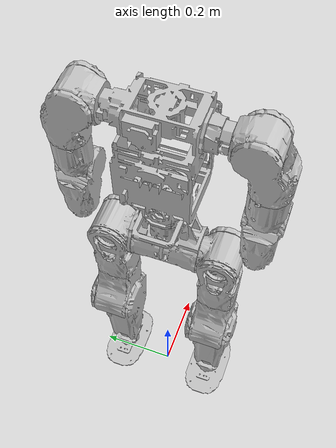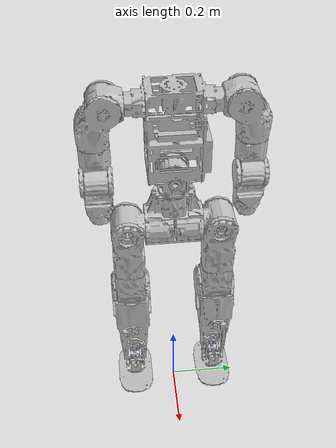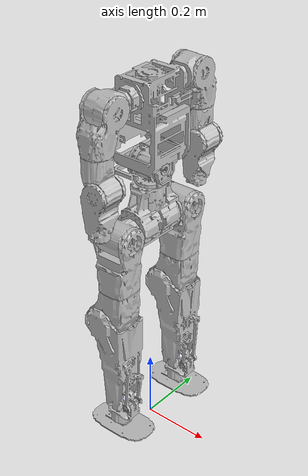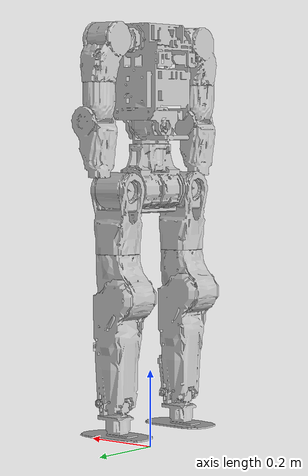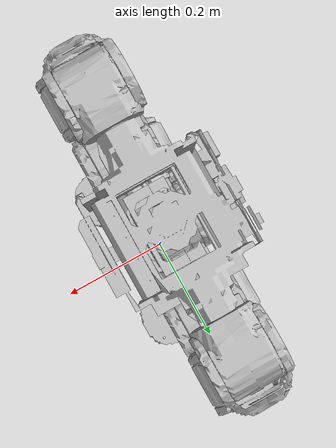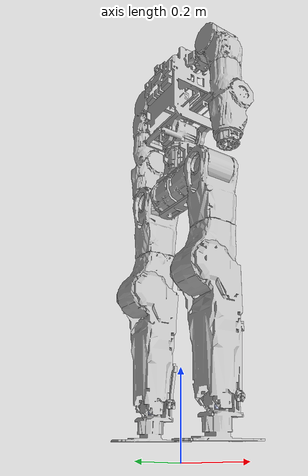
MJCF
<?xml version='1.0' encoding='utf-8'?>
<mujoco model="GP02">
  <compiler angle="radian" eulerseq="zyx" meshdir="../meshes" autolimits="true" />
  <option timestep="0.001" />
  <visual>
    <global azimuth="150" elevation="-20" />
    <headlight ambient="0.3 0.3 0.3" diffuse="0.6 0.6 0.6" specular="0 0 0" />
    <scale forcewidth="0.03" contactwidth="0.01" contactheight="0.02" com="1" framelength="0.6" framewidth="0.05" />
    <rgba haze="0.15 0.25 0.35 1" com="0.502 1 0 0.5" contactpoint="1 1 0.6 0.4" contactforce="0.98 0.4 0.4 1" />
  </visual>

  <asset>
    <mesh name="base_link" file="base_link.STL" />
    <mesh name="L_hip_pitch_link" file="L_hip_pitch_link.STL" />
    <mesh name="L_hip_roll_link" file="L_hip_roll_link.STL" />
    <mesh name="L_hip_yaw_link" file="L_hip_yaw_link.STL" />
    <mesh name="L_knee_link" file="L_knee_link.STL" />
    <mesh name="L_ankle_pitch_link" file="L_ankle_pitch_link.STL" />
    <mesh name="L_ankle_roll_link" file="L_ankle_roll_link.STL" />
    <mesh name="R_hip_pitch_link" file="R_hip_pitch_link.STL" />
    <mesh name="R_hip_roll_link" file="R_hip_roll_link.STL" />
    <mesh name="R_hip_yaw_link" file="R_hip_yaw_link.STL" />
    <mesh name="R_knee_link" file="R_knee_link.STL" />
    <mesh name="R_ankle_pitch_link" file="R_ankle_pitch_link.STL" />
    <mesh name="R_ankle_roll_link" file="R_ankle_roll_link.STL" />
    <mesh name="waist_yaw_link" file="waist_yaw_link.STL" />
    <mesh name="waist_roll_link" file="waist_roll_link.STL" />
    <mesh name="L_shoulder_pitch_link" file="L_shoulder_pitch_link.STL" />
    <mesh name="L_shoulder_roll_link" file="L_shoulder_roll_link.STL" />
    <mesh name="L_shoulder_yaw_link" file="L_shoulder_yaw_link.STL" />
    <mesh name="L_elbow_link" file="L_elbow_link.STL" />
    <mesh name="R_shoulder_pitch_link" file="R_shoulder_pitch_link.STL" />
    <mesh name="R_shoulder_roll_link" file="R_shoulder_roll_link.STL" />
    <mesh name="R_shoulder_yaw_link" file="R_shoulder_yaw_link.STL" />
    <mesh name="R_elbow_link" file="R_elbow_link.STL" />
  </asset>

  <worldbody>
    <body name="base_link" pos="0 0 0.67">
      <inertial pos="0 -0.004 0.025" mass="0.987" diaginertia="0.006 0.004 0.003" />
      <freejoint name="floating_base_joint" />
      <geom type="mesh" contype="1" group="1" density="0" rgba="0.752941 0.752941 0.752941 1" mesh="base_link" solref="0.005 1" condim="3" friction="1 1 0" />
      <geom type="mesh" rgba="0.752941 0.752941 0.752941 1" mesh="base_link" contype="0" conaffinity="0" solref="0.005 1" condim="3" friction="1 1 0" />
      <geom type="mesh" rgba="0.752941 0.752941 0.752941 1" mesh="base_link" contype="0" density="0" group="1" conaffinity="0" solref="0.005 1" condim="3" friction="1 1 0" />
      <geom type="mesh" rgba="0.752941 0.752941 0.752941 1" mesh="base_link" contype="0" conaffinity="0" solref="0.005 1" condim="3" friction="1 1 0" />
      <camera name="track" pos="0 -3 1" quat="0.850651 0.525731 0 0" mode="track" />
      <site name = "imu" size = "0.01" pos = "0 0 -0.0057" />

      <body name="left_hip_pitch_link" pos="0 0.079 0">
        <inertial pos="0.002 0.045 0" mass="0.422" diaginertia="0.001 0.001 0.001" />
        <joint name="left_hip_pitch_joint" pos="0 0 0" axis="0 1 0" range="-2.62 2.62" />
        <geom type="mesh" contype="0" conaffinity="0" group="1" density="0" rgba="0.75294 0.75294 0.75294 1" mesh="L_hip_pitch_link" />
        <geom type="mesh" rgba="0.75294 0.75294 0.75294 1" mesh="L_hip_pitch_link" contype="0" conaffinity="0" />
        <geom type="mesh" rgba="0.75294 0.75294 0.75294 1" mesh="L_hip_pitch_link" contype="0" conaffinity="0" density="0" group="1" />
        <geom type="mesh" rgba="0.75294 0.75294 0.75294 1" mesh="L_hip_pitch_link" contype="0" conaffinity="0" />
        <body name="left_hip_roll_link" pos="0.0366 0.05 0">
          <inertial pos="-0.032 -0.001 -0.078" quat="0.699481 -0.103571 -0.103571 0.699481" mass="0.785" diaginertia="0.009 0.00860555 0.00139445" />
          <joint name="left_hip_roll_joint" pos="0 0 0" axis="1 0 0" range="-0.17 3.32" />
          <geom type="mesh" contype="0" conaffinity="0" group="1" density="0" rgba="0.752941 0.752941 0.752941 1" mesh="L_hip_roll_link" />
          <geom type="mesh" rgba="0.752941 0.752941 0.752941 1" mesh="L_hip_roll_link" contype="0" conaffinity="0" />
          <geom type="mesh" rgba="0.752941 0.752941 0.752941 1" mesh="L_hip_roll_link" contype="0" conaffinity="0" density="0" group="1" />
          <geom type="mesh" rgba="0.752941 0.752941 0.752941 1" mesh="L_hip_roll_link" contype="0" conaffinity="0" />
          <body name="left_hip_yaw_link" pos="-0.0366 0 -0.1566">
            <inertial pos="-0.019 -0.007 -0.08" quat="0.699481 -0.103571 -0.103571 0.699481" mass="0.865" diaginertia="0.009 0.00860555 0.00139445" />
            <joint name="left_hip_yaw_joint" pos="0 0 0" axis="0 0 1" range="-2.62 2.62" />
            <geom type="mesh" contype="0" conaffinity="0" group="1" density="0" rgba="0.752941 0.752941 0.752941 1" mesh="L_hip_yaw_link" />
            <geom type="mesh" rgba="0.752941 0.752941 0.752941 1" mesh="L_hip_yaw_link" contype="0" conaffinity="0" />
            <geom type="mesh" rgba="0.752941 0.752941 0.752941 1" mesh="L_hip_yaw_link" contype="0" conaffinity="0" density="0" group="1" />
            <geom type="mesh" rgba="0.752941 0.752941 0.752941 1" mesh="L_hip_yaw_link" contype="0" conaffinity="0" />
            <body name="left_knee_link" pos="-0.035 0.0406 -0.1139">
              <inertial pos="0.033 -0.041 -0.132" mass="2.033" diaginertia="0.058 0.056 0.011" />
              <joint name="left_knee_joint" pos="0 0 0" axis="0 1 0" range="-0.17 2.97" />
              <geom type="mesh" contype="0" conaffinity="0" group="1" density="0" rgba="0.752941 0.752941 0.752941 1" mesh="L_knee_link" />
              <geom type="mesh" rgba="0.752941 0.752941 0.752941 1" mesh="L_knee_link" contype="0" conaffinity="0" />
              <geom type="mesh" rgba="0.752941 0.752941 0.752941 1" mesh="L_knee_link" contype="0" conaffinity="0" density="0" group="1" />
              <geom type="mesh" rgba="0.752941 0.752941 0.752941 1" mesh="L_knee_link" contype="0" conaffinity="0" />
              <body name="left_ankle_pitch_link" pos="0.035 -0.0241 -0.28">
                <inertial pos="0 -0.016 0" mass="0.056" diaginertia="0.0001 0.0001 0.0001" />
                <joint name="left_ankle_pitch_joint" pos="0 0 0" axis="0 1 0" range="-0.87267 0.5236" />
                <geom type="mesh" contype="0" conaffinity="0" group="1" density="0" rgba="0.792157 0.819608 0.929412 1" mesh="L_ankle_pitch_link" />
                <geom type="mesh" rgba="0.792157 0.819608 0.929412 1" mesh="L_ankle_pitch_link" contype="0" conaffinity="0" />
                <geom type="mesh" rgba="0.792157 0.819608 0.929412 1" mesh="L_ankle_pitch_link" contype="0" conaffinity="0" density="0" group="1" />
                <geom type="mesh" rgba="0.792157 0.819608 0.929412 1" mesh="L_ankle_pitch_link" contype="0" conaffinity="0" />
                <body name="left_ankle_roll_link" pos="0.015 -0.0165 0">
                  <inertial pos="-0.006 0 -0.046" quat="0.707107 0 0 0.707107" mass="0.625" diaginertia="0.003 0.002 0.001" />
                  <joint name="left_ankle_roll_joint" pos="0 0 0" axis="1 0 0" range="-0.2618 0.2618" />
                  <geom type="mesh" contype="1" group="1" density="0" rgba="0.752941 0.752941 0.752941 1" mesh="L_ankle_roll_link" solref="0.005 1" condim="3" friction="1 1 0" />
                  <geom type="mesh" rgba="0.752941 0.752941 0.752941 1" mesh="L_ankle_roll_link" contype="0" conaffinity="0" solref="0.005 1" condim="3" friction="1 1 0" />
                  <geom type="mesh" rgba="0.752941 0.752941 0.752941 1" mesh="L_ankle_roll_link" contype="0" density="0" group="1" conaffinity="0" solref="0.005 1" condim="3" friction="1 1 0" />
                  <geom type="mesh" rgba="0.752941 0.752941 0.752941 1" mesh="L_ankle_roll_link" contype="0" conaffinity="0" solref="0.005 1" condim="3" friction="1 1 0" />
                </body>
              </body>
            </body>
          </body>
        </body>
      </body>
      <body name="right_hip_pitch_link" pos="0 -0.079 0">
        <inertial pos="0.002 -0.045 0" mass="0.422" diaginertia="0.001 0.001 0.001" />
        <joint name="right_hip_pitch_joint" pos="0 0 0" axis="0 1 0" range="-2.62 2.62" />
        <geom type="mesh" contype="0" conaffinity="0" group="1" density="0" rgba="0.75294 0.75294 0.75294 1" mesh="R_hip_pitch_link" />
        <geom type="mesh" rgba="0.75294 0.75294 0.75294 1" mesh="R_hip_pitch_link" contype="0" conaffinity="0" />
        <geom type="mesh" rgba="0.75294 0.75294 0.75294 1" mesh="R_hip_pitch_link" contype="0" conaffinity="0" density="0" group="1" />
        <geom type="mesh" rgba="0.75294 0.75294 0.75294 1" mesh="R_hip_pitch_link" contype="0" conaffinity="0" />
        <body name="right_hip_roll_link" pos="0.0366 -0.05 0">
          <inertial pos="-0.032 0.001 -0.078" quat="0.699481 -0.103571 -0.103571 0.699481" mass="0.785" diaginertia="0.009 0.00860555 0.00139445" />
          <joint name="right_hip_roll_joint" pos="0 0 0" axis="1 0 0" range="-3.32 0.17" />
          <geom type="mesh" contype="0" conaffinity="0" group="1" density="0" rgba="0.75294 0.75294 0.75294 1" mesh="R_hip_roll_link" />
          <geom type="mesh" rgba="0.75294 0.75294 0.75294 1" mesh="R_hip_roll_link" contype="0" conaffinity="0" />
          <geom type="mesh" rgba="0.75294 0.75294 0.75294 1" mesh="R_hip_roll_link" contype="0" conaffinity="0" density="0" group="1" />
          <geom type="mesh" rgba="0.75294 0.75294 0.75294 1" mesh="R_hip_roll_link" contype="0" conaffinity="0" />
          <body name="right_hip_yaw_link" pos="-0.0366 0 -0.1566">
            <inertial pos="-0.019 0.007 -0.08" quat="0.699481 -0.103571 -0.103571 0.699481" mass="0.865" diaginertia="0.009 0.00860555 0.00139445" />
            <joint name="right_hip_yaw_joint" pos="0 0 0" axis="0 0 1" range="-2.62 2.62" />
            <geom type="mesh" contype="0" conaffinity="0" group="1" density="0" rgba="0.75294 0.75294 0.75294 1" mesh="R_hip_yaw_link" />
            <geom type="mesh" rgba="0.75294 0.75294 0.75294 1" mesh="R_hip_yaw_link" contype="0" conaffinity="0" />
            <geom type="mesh" rgba="0.75294 0.75294 0.75294 1" mesh="R_hip_yaw_link" contype="0" conaffinity="0" density="0" group="1" />
            <geom type="mesh" rgba="0.75294 0.75294 0.75294 1" mesh="R_hip_yaw_link" contype="0" conaffinity="0" />
            <body name="right_knee_link" pos="-0.035 -0.0406 -0.1139">
              <inertial pos="0.033 0.041 -0.132" mass="2.033" diaginertia="0.058 0.056 0.011" />
              <joint name="right_knee_joint" pos="0 0 0" axis="0 1 0" range="-0.17 2.97" />
              <geom type="mesh" contype="0" conaffinity="0" group="1" density="0" rgba="0.75294 0.75294 0.75294 1" mesh="R_knee_link" />
              <geom type="mesh" rgba="0.75294 0.75294 0.75294 1" mesh="R_knee_link" contype="0" conaffinity="0" />
              <geom type="mesh" rgba="0.75294 0.75294 0.75294 1" mesh="R_knee_link" contype="0" conaffinity="0" density="0" group="1" />
              <geom type="mesh" rgba="0.75294 0.75294 0.75294 1" mesh="R_knee_link" contype="0" conaffinity="0" />
              <body name="right_ankle_pitch_link" pos="0.035 0.0241 -0.28">
                <inertial pos="0 0.017 0" mass="0.056" diaginertia="0.0001 0.0001 0.0001" />
                <joint name="right_ankle_pitch_joint" pos="0 0 0" axis="0 1 0" range="-0.87267 0.5236" />
                <geom type="mesh" contype="0" conaffinity="0" group="1" density="0" rgba="0.79216 0.81961 0.93333 1" mesh="R_ankle_pitch_link" />
                <geom type="mesh" rgba="0.79216 0.81961 0.93333 1" mesh="R_ankle_pitch_link" contype="0" conaffinity="0" />
                <geom type="mesh" rgba="0.79216 0.81961 0.93333 1" mesh="R_ankle_pitch_link" contype="0" conaffinity="0" density="0" group="1" />
                <geom type="mesh" rgba="0.79216 0.81961 0.93333 1" mesh="R_ankle_pitch_link" contype="0" conaffinity="0" />
                <body name="right_ankle_roll_link" pos="0.015 0.0165 0">
                  <inertial pos="-0.006 0 -0.046" quat="0.707107 0 0 0.707107" mass="0.625" diaginertia="0.003 0.002 0.001" />
                  <joint name="right_ankle_roll_joint" pos="0 0 0" axis="1 0 0" range="-0.2618 0.2618" />
                  <geom type="mesh" contype="1" group="1" density="0" rgba="0.75294 0.75294 0.75294 1" mesh="R_ankle_roll_link" solref="0.005 1" condim="3" friction="1 1 0" />
                  <geom type="mesh" rgba="0.75294 0.75294 0.75294 1" mesh="R_ankle_roll_link" contype="0" conaffinity="0" solref="0.005 1" condim="3" friction="1 1 0" />
                  <geom type="mesh" rgba="0.75294 0.75294 0.75294 1" mesh="R_ankle_roll_link" contype="0" density="0" group="1" conaffinity="0" solref="0.005 1" condim="3" friction="1 1 0" />
                  <geom type="mesh" rgba="0.75294 0.75294 0.75294 1" mesh="R_ankle_roll_link" contype="0" conaffinity="0" solref="0.005 1" condim="3" friction="1 1 0" />
                </body>
              </body>
            </body>
          </body>
        </body>
      </body>
      <body name="waist_yaw_link" pos="0 0 0.116">
        <inertial pos="0.001 0 0.032" mass="0.237" diaginertia="0.001 0.001 0.001" />
        <geom type="mesh" contype="0" conaffinity="0" group="1" density="0" rgba="0.75294 0.75294 0.75294 1" mesh="waist_yaw_link" />
        <geom type="mesh" rgba="0.75294 0.75294 0.75294 1" mesh="waist_yaw_link" contype="0" conaffinity="0" />
        <geom type="mesh" rgba="0.75294 0.75294 0.75294 1" mesh="waist_yaw_link" contype="0" conaffinity="0" density="0" group="1" />
        <geom type="mesh" rgba="0.75294 0.75294 0.75294 1" mesh="waist_yaw_link" contype="0" conaffinity="0" />
        <body name="torso_link" pos="0.04 2.1468e-05 0.048">
          <inertial pos="-0.038 0.005 0.127" quat="0.978899 -0.0121235 0.125226 -0.16102" mass="9.36" diaginertia="0.257673 0.244741 0.0575852" />
          <geom type="mesh" contype="1" group="1" density="0" rgba="0.752941 0.752941 0.752941 1" mesh="waist_roll_link" solref="0.005 1" condim="3" friction="1 1 0" />
          <geom type="mesh" rgba="0.752941 0.752941 0.752941 1" mesh="waist_roll_link" contype="0" conaffinity="0" solref="0.005 1" condim="3" friction="1 1 0" />
          <geom type="mesh" rgba="0.752941 0.752941 0.752941 1" mesh="waist_roll_link" contype="0" density="0" group="1" conaffinity="0" solref="0.005 1" condim="3" friction="1 1 0" />
          <geom type="mesh" rgba="0.752941 0.752941 0.752941 1" mesh="waist_roll_link" contype="0" conaffinity="0" solref="0.005 1" condim="3" friction="1 1 0" />
          <body name="left_shoulder_pitch_link" pos="-0.04 0.118219 0.2145">
            <inertial pos="0.005 0.048 -0.001" quat="0.707107 0.707107 0 0" mass="0.5784" diaginertia="0.002 0.002 0.001" />
            <joint name="left_shoulder_pitch_joint" pos="0 0 0" axis="0 1 0" range="-2.36 2.36" />
            <geom type="mesh" contype="0" conaffinity="0" group="1" density="0" rgba="0.752941 0.752941 0.752941 1" mesh="L_shoulder_pitch_link" />
            <geom type="mesh" rgba="0.752941 0.752941 0.752941 1" mesh="L_shoulder_pitch_link" contype="0" conaffinity="0" />
            <geom type="mesh" rgba="0.752941 0.752941 0.752941 1" mesh="L_shoulder_pitch_link" contype="0" conaffinity="0" density="0" group="1" />
            <geom type="mesh" rgba="0.752941 0.752941 0.752941 1" mesh="L_shoulder_pitch_link" contype="0" conaffinity="0" />
            <body name="left_shoulder_roll_link" pos="0.0355 0.0505 0">
              <inertial pos="-0.035 0.027 -0.073" quat="0.707107 0 0 0.707107" mass="0.781" diaginertia="0.008 0.007 0.003" />
              <geom type="mesh" contype="0" conaffinity="0" group="1" density="0" rgba="0.752941 0.752941 0.752941 1" mesh="L_shoulder_roll_link" />
              <geom type="mesh" rgba="0.752941 0.752941 0.752941 1" mesh="L_shoulder_roll_link" contype="0" conaffinity="0" />
              <geom type="mesh" rgba="0.752941 0.752941 0.752941 1" mesh="L_shoulder_roll_link" contype="0" conaffinity="0" density="0" group="1" />
              <geom type="mesh" rgba="0.752941 0.752941 0.752941 1" mesh="L_shoulder_roll_link" contype="0" conaffinity="0" />
              <body name="left_shoulder_yaw_link" pos="-0.0355 0.031 -0.1345">
                <inertial pos="0.014 0.004 -0.054" quat="0.980785 0 0.19509 0" mass="0.66" diaginertia="0.00341421 0.003 0.000585786" />
                <geom type="mesh" contype="0" conaffinity="0" group="1" density="0" rgba="0.752941 0.752941 0.752941 1" mesh="L_shoulder_yaw_link" />
                <geom type="mesh" rgba="0.752941 0.752941 0.752941 1" mesh="L_shoulder_yaw_link" contype="0" conaffinity="0" />
                <geom type="mesh" rgba="0.752941 0.752941 0.752941 1" mesh="L_shoulder_yaw_link" contype="0" conaffinity="0" density="0" group="1" />
                <geom type="mesh" rgba="0.752941 0.752941 0.752941 1" mesh="L_shoulder_yaw_link" contype="0" conaffinity="0" />
                <body name="left_elbow_link" pos="0.02 0.034 -0.0705" quat="1 0 0 0">
                  <inertial pos="-0.018 -0.034 -0.078" quat="0.956831 0.142428 -0.105924 0.230151" mass="0.76" diaginertia="0.00830777 0.00752444 0.00116779" />
                  <geom type="mesh" contype="0" conaffinity="0" group="1" density="0" rgba="0.752941 0.752941 0.752941 1" mesh="L_elbow_link" />
                  <geom type="mesh" rgba="0.752941 0.752941 0.752941 1" mesh="L_elbow_link" contype="0" conaffinity="0" />
                  <geom type="mesh" rgba="0.752941 0.752941 0.752941 1" mesh="L_elbow_link" contype="0" conaffinity="0" density="0" group="1" />
                  <geom type="mesh" rgba="0.752941 0.752941 0.752941 1" mesh="L_elbow_link" contype="0" conaffinity="0" />
                </body>
              </body>
            </body>
          </body>
          <body name="right_shoulder_pitch_link" pos="-0.04 -0.118261 0.2145">
            <inertial pos="0.005 -0.048 -0.001" quat="0.707107 0.707107 0 0" mass="0.5784" diaginertia="0.002 0.002 0.001" />
            <joint name="right_shoulder_pitch_joint" pos="0 0 0" axis="0 1 0" range="-2.36 2.36" />
            <geom type="mesh" contype="0" conaffinity="0" group="1" density="0" rgba="0.752941 0.752941 0.752941 1" mesh="R_shoulder_pitch_link" />
            <geom type="mesh" rgba="0.752941 0.752941 0.752941 1" mesh="R_shoulder_pitch_link" contype="0" conaffinity="0" />
            <geom type="mesh" rgba="0.752941 0.752941 0.752941 1" mesh="R_shoulder_pitch_link" contype="0" conaffinity="0" density="0" group="1" />
            <geom type="mesh" rgba="0.752941 0.752941 0.752941 1" mesh="R_shoulder_pitch_link" contype="0" conaffinity="0" />
            <body name="right_shoulder_roll_link" pos="0.0355 -0.0505 0">
              <inertial pos="-0.035 -0.027 -0.073" quat="0.707107 0 0 0.707107" mass="0.781" diaginertia="0.008 0.007 0.003" />
              <geom type="mesh" contype="0" conaffinity="0" group="1" density="0" rgba="0.752941 0.752941 0.752941 1" mesh="R_shoulder_roll_link" />
              <geom type="mesh" rgba="0.752941 0.752941 0.752941 1" mesh="R_shoulder_roll_link" contype="0" conaffinity="0" />
              <geom type="mesh" rgba="0.752941 0.752941 0.752941 1" mesh="R_shoulder_roll_link" contype="0" conaffinity="0" density="0" group="1" />
              <geom type="mesh" rgba="0.752941 0.752941 0.752941 1" mesh="R_shoulder_roll_link" contype="0" conaffinity="0" />
              <body name="right_shoulder_yaw_link" pos="-0.0355 -0.031 -0.1345">
                <inertial pos="-0.004 -0.014 -0.054" quat="0.69352 0.13795 -0.13795 0.69352" mass="0.66" diaginertia="0.00341421 0.003 0.000585786" />
                <geom type="mesh" contype="0" conaffinity="0" group="1" density="0" rgba="0.752941 0.752941 0.752941 1" mesh="R_shoulder_yaw_link" />
                <geom type="mesh" rgba="0.752941 0.752941 0.752941 1" mesh="R_shoulder_yaw_link" contype="0" conaffinity="0" />
                <geom type="mesh" rgba="0.752941 0.752941 0.752941 1" mesh="R_shoulder_yaw_link" contype="0" conaffinity="0" density="0" group="1" />
                <geom type="mesh" rgba="0.752941 0.752941 0.752941 1" mesh="R_shoulder_yaw_link" contype="0" conaffinity="0" />
                <body name="right_elbow_link" pos="0.02 -0.034 -0.0705" quat="1 0 0 0">
                  <inertial pos="-0.02 0.032 -0.078" quat="0.956831 -0.142428 -0.105924 -0.230151" mass="0.76" diaginertia="0.00830777 0.00752444 0.00116779" />
                  <geom type="mesh" contype="0" conaffinity="0" group="1" density="0" rgba="0.752941 0.752941 0.752941 1" mesh="R_elbow_link" />
                  <geom type="mesh" rgba="0.752941 0.752941 0.752941 1" mesh="R_elbow_link" contype="0" conaffinity="0" />
                  <geom type="mesh" rgba="0.752941 0.752941 0.752941 1" mesh="R_elbow_link" contype="0" conaffinity="0" density="0" group="1" />
                  <geom type="mesh" rgba="0.752941 0.752941 0.752941 1" mesh="R_elbow_link" contype="0" conaffinity="0" />
                </body>
              </body>
            </body>
          </body>
        </body>
      </body>
    </body>
  </worldbody>

  <actuator>
    <motor name="left_hip_pitch_joint" joint="left_hip_pitch_joint" ctrlrange="-88 88" />
    <motor name="left_hip_roll_joint" joint="left_hip_roll_joint" ctrlrange="-88 88" />
    <motor name="left_hip_yaw_joint" joint="left_hip_yaw_joint" ctrlrange="-88 88" />
    <motor name="left_knee_joint" joint="left_knee_joint" ctrlrange="-139 139" />
    <motor name="left_ankle_pitch_joint" joint="left_ankle_pitch_joint" ctrlrange="-50 50" />
    <motor name="left_ankle_roll_joint" joint="left_ankle_roll_joint" ctrlrange="-50 50" />
    <motor name="right_hip_pitch_joint" joint="right_hip_pitch_joint" ctrlrange="-88 88" />
    <motor name="right_hip_roll_joint" joint="right_hip_roll_joint" ctrlrange="-88 88" />
    <motor name="right_hip_yaw_joint" joint="right_hip_yaw_joint" ctrlrange="-88 88" />
    <motor name="right_knee_joint" joint="right_knee_joint" ctrlrange="-139 139" />
    <motor name="right_ankle_pitch_joint" joint="right_ankle_pitch_joint" ctrlrange="-50 50" />
    <motor name="right_ankle_roll_joint" joint="right_ankle_roll_joint" ctrlrange="-50 50" />
    <motor name="left_shoulder_pitch_joint" joint="left_shoulder_pitch_joint" ctrlrange="-25 25" />
    <motor name="right_shoulder_pitch_joint" joint="right_shoulder_pitch_joint" ctrlrange="-25 25" />
  </actuator>

  <sensor>
    <framequat name="body-orientation" objtype="site" objname="imu" noise="0" />
    <gyro name="body-angular-velocity" site="imu" noise="0.001" />
    <framepos name="body-linear-pos" objtype="site" objname="imu" />
    <velocimeter name="body-linear-vel" site="imu" />
    <accelerometer name="body-linear-acceleration" site="imu" noise="0.001" />
    <jointpos name="jointpos_left_hip_pitch_joint" joint="left_hip_pitch_joint" noise="0" />
    <jointpos name="jointpos_left_hip_roll_joint" joint="left_hip_roll_joint" noise="0" />
    <jointpos name="jointpos_left_hip_yaw_joint" joint="left_hip_yaw_joint" noise="0" />
    <jointpos name="jointpos_left_knee_joint" joint="left_knee_joint" noise="0" />
    <jointpos name="jointpos_left_ankle_pitch_joint" joint="left_ankle_pitch_joint" noise="0" />
    <jointpos name="jointpos_left_ankle_roll_joint" joint="left_ankle_roll_joint" noise="0" />
    <jointpos name="jointpos_right_hip_pitch_joint" joint="right_hip_pitch_joint" noise="0" />
    <jointpos name="jointpos_right_hip_roll_joint" joint="right_hip_roll_joint" noise="0" />
    <jointpos name="jointpos_right_hip_yaw_joint" joint="right_hip_yaw_joint" noise="0" />
    <jointpos name="jointpos_right_knee_joint" joint="right_knee_joint" noise="0" />
    <jointpos name="jointpos_right_ankle_pitch_joint" joint="right_ankle_pitch_joint" noise="0" />
    <jointpos name="jointpos_right_ankle_roll_joint" joint="right_ankle_roll_joint" noise="0" />
    <jointpos name="jointpos_left_shoulder_pitch_joint" joint="left_shoulder_pitch_joint" noise="0" />
    <jointpos name="jointpos_right_shoulder_pitch_joint" joint="right_shoulder_pitch_joint" noise="0" />
    <jointvel name="jointvel_left_hip_pitch_joint" joint="left_hip_pitch_joint" noise="0" />
    <jointvel name="jointvel_left_hip_roll_joint" joint="left_hip_roll_joint" noise="0" />
    <jointvel name="jointvel_left_hip_yaw_joint" joint="left_hip_yaw_joint" noise="0" />
    <jointvel name="jointvel_left_knee_joint" joint="left_knee_joint" noise="0" />
    <jointvel name="jointvel_left_ankle_pitch_joint" joint="left_ankle_pitch_joint" noise="0" />
    <jointvel name="jointvel_left_ankle_roll_joint" joint="left_ankle_roll_joint" noise="0" />
    <jointvel name="jointvel_right_hip_pitch_joint" joint="right_hip_pitch_joint" noise="0" />
    <jointvel name="jointvel_right_hip_roll_joint" joint="right_hip_roll_joint" noise="0" />
    <jointvel name="jointvel_right_hip_yaw_joint" joint="right_hip_yaw_joint" noise="0" />
    <jointvel name="jointvel_right_knee_joint" joint="right_knee_joint" noise="0" />
    <jointvel name="jointvel_right_ankle_pitch_joint" joint="right_ankle_pitch_joint" noise="0" />
    <jointvel name="jointvel_right_ankle_roll_joint" joint="right_ankle_roll_joint" noise="0" />
    <jointvel name="jointvel_left_shoulder_pitch_joint" joint="left_shoulder_pitch_joint" noise="0" />
    <jointvel name="jointvel_right_shoulder_pitch_joint" joint="right_shoulder_pitch_joint" noise="0" />
  </sensor>
  <keyframe>
    <key name="home_default" qpos="0 0 0.61 1 0. 0. 0. -0.283 0.0 -0.0 0.44 -0.157 0.0 0.05 -0.283 -0.0 0.0 0.44 -0.157 0.0 0.05" />
  </keyframe>
</mujoco>
